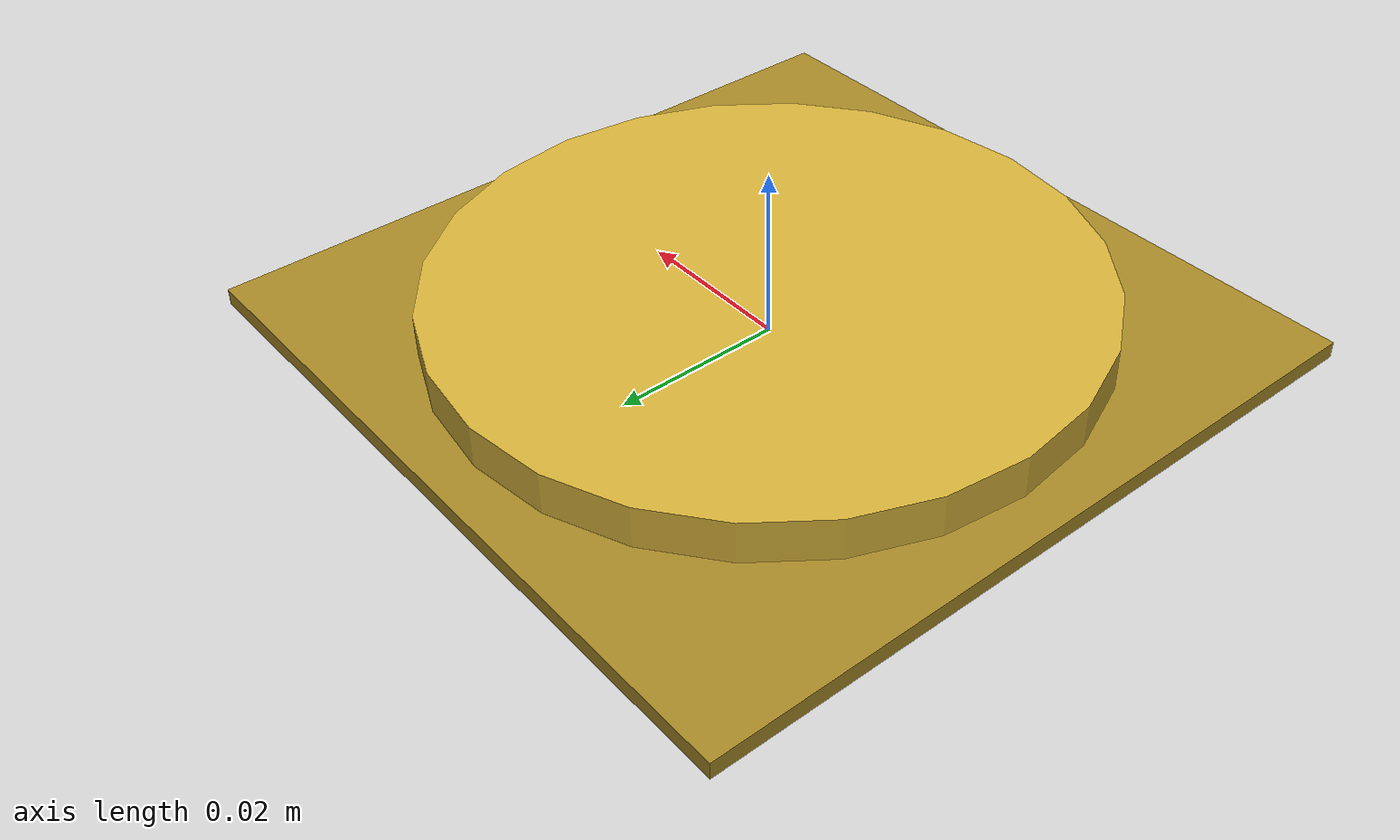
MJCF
<mujoco model="Switch_Quantity4_04">
  <asset>
    <material name="Switch_Quantity4_04_bezel" rgba="0.65 0.53 0.15 1" specular="0.9" shininess="0.95"/>
    <material name="Switch_Quantity4_04_button" rgba="0.83 0.69 0.22 1" specular="0.9" shininess="0.95"/>
  </asset>
  <worldbody>
    <body name="Switch_Quantity4_04">
      <geom name="Switch_Quantity4_04_bezel" type="box"
            pos="0 0 0.001" size="0.043 0.043 0.001"
            material="Switch_Quantity4_04_bezel"/>
      <geom name="Switch_Quantity4_04_button" type="cylinder"
            pos="0 0 0.0035" size="0.038 0.0035"
            material="Switch_Quantity4_04_button"/>
    </body>
  </worldbody>
</mujoco>
